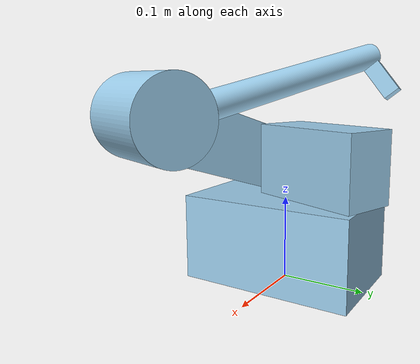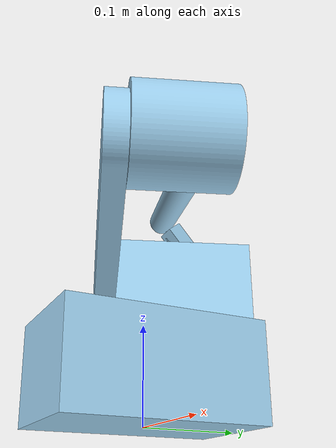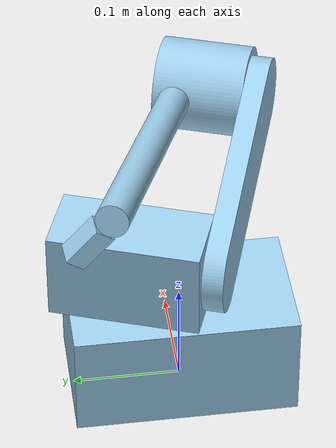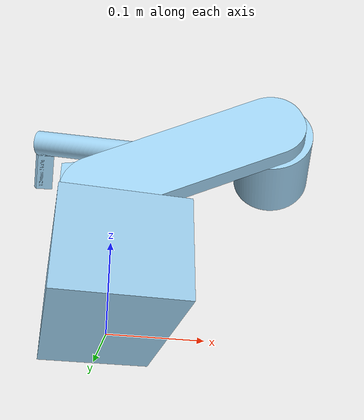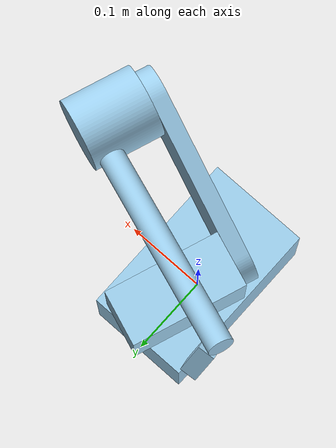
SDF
<?xml version="1.0" ?>
<!-- Generated using onshape-to-robot -->
<!-- Onshape https://cad.onshape.com/documents/95fd851c76f3f6bde8c085de/w/d547567e27705c867ac23e03/e/46c7eb3c59f888e21815eca3 -->
<sdf version="1.7">
  <model name="robot_description">
    <!-- Link base -->
    <link name="base">
      <inertial>
        <pose>2.99382e-22 -1.7312e-05 0.0512863 0 0 0</pose>
        <mass>8</mass>
        <inertia>
          <ixx>0.0355812</ixx>
          <ixy>0</ixy>
          <ixz>0</ixz>
          <iyy>0.0174346</iyy>
          <iyz>6.41425e-06</iyz>
          <izz>0.0389861</izz>
        </inertia>
      </inertial>
      <pose>0 0 0 0 -0 0</pose>
      <!-- Part base -->
      <visual name="base_visual_mesh_1">
        <pose relative_to="base">0 0 0.1026 3.14159 -0 1.5708</pose>
        <geometry>
          <mesh>
            <uri>model://robot_description/assets/base.stl</uri>
          </mesh>
        </geometry>
        <material>
          <ambient>0.615686 0.811765 0.929412 1</ambient>
          <diffuse>0.615686 0.811765 0.929412 1</diffuse>
          <specular>0.1 0.1 0.1 1</specular>
          <emissive>0 0 0 0</emissive>
        </material>
      </visual>
      <collision name="base_collision_mesh_2">
        <pose relative_to="base">0 0 0.1026 3.14159 -0 1.5708</pose>
        <geometry>
          <mesh>
            <uri>model://robot_description/assets/base.stl</uri>
          </mesh>
        </geometry>
      </collision>
    </link>
    <joint name="base_fixed_world" type="fixed">
      <parent>world</parent>
      <child>base</child>
    </joint>
    <!-- Link link_j1 -->
    <link name="link_j1">
      <inertial>
        <pose>0.0149283 -2.64819e-18 -0.0425258 0 0 0</pose>
        <mass>2.59</mass>
        <inertia>
          <ixx>0.0025397</ixx>
          <ixy>-2.50616e-21</ixy>
          <ixz>1.99012e-06</ixz>
          <iyy>0.00578814</iyy>
          <iyz>-1.83256e-23</iyz>
          <izz>0.00519517</izz>
        </inertia>
      </inertial>
      <pose relative_to="j1">0 0 0 0 -0 0</pose>
      <!-- Part link_j1 -->
      <visual name="link_j1_visual_mesh_1">
        <pose relative_to="link_j1">0.015 0 0 3.14159 -0 -9.20826e-18</pose>
        <geometry>
          <mesh>
            <uri>model://robot_description/assets/link_j1.stl</uri>
          </mesh>
        </geometry>
        <material>
          <ambient>0.615686 0.811765 0.929412 1</ambient>
          <diffuse>0.615686 0.811765 0.929412 1</diffuse>
          <specular>0.1 0.1 0.1 1</specular>
          <emissive>0 0 0 0</emissive>
        </material>
      </visual>
      <collision name="link_j1_collision_mesh_2">
        <pose relative_to="link_j1">0.015 0 0 3.14159 -0 -9.20826e-18</pose>
        <geometry>
          <mesh>
            <uri>model://robot_description/assets/link_j1.stl</uri>
          </mesh>
        </geometry>
      </collision>
    </link>
    <!-- Link link_j2 -->
    <link name="link_j2">
      <inertial>
        <pose>0.107522 6.82545e-18 -0.00988834 0 0 0</pose>
        <mass>1.75</mass>
        <inertia>
          <ixx>0.000857918</ixx>
          <ixy>-1.52824e-19</ixy>
          <ixz>2.47292e-05</ixz>
          <iyy>0.00952465</iyy>
          <iyz>-4.71797e-19</iyz>
          <izz>0.0102557</izz>
        </inertia>
      </inertial>
      <pose relative_to="j2">0 0 0 0 -0 0</pose>
      <!-- Part link_j2 -->
      <visual name="link_j2_visual_mesh_1">
        <pose relative_to="link_j2">6.93889e-18 0 -0.02 -8.4033e-18 -1.12211e-17 -2.75735e-17</pose>
        <geometry>
          <mesh>
            <uri>model://robot_description/assets/link_j2.stl</uri>
          </mesh>
        </geometry>
        <material>
          <ambient>0.615686 0.811765 0.929412 1</ambient>
          <diffuse>0.615686 0.811765 0.929412 1</diffuse>
          <specular>0.1 0.1 0.1 1</specular>
          <emissive>0 0 0 0</emissive>
        </material>
      </visual>
      <collision name="link_j2_collision_mesh_2">
        <pose relative_to="link_j2">6.93889e-18 0 -0.02 -8.4033e-18 -1.12211e-17 -2.75735e-17</pose>
        <geometry>
          <mesh>
            <uri>model://robot_description/assets/link_j2.stl</uri>
          </mesh>
        </geometry>
      </collision>
    </link>
    <!-- Link link_j3 -->
    <link name="link_j3">
      <inertial>
        <pose>-5.95014e-05 -1.42028e-09 -0.0425214 0 0 0</pose>
        <mass>0.472</mass>
        <inertia>
          <ixx>0.000507467</ixx>
          <ixy>2.16011e-11</ixy>
          <ixz>-6.11734e-07</ixz>
          <iyy>0.000506392</iyy>
          <iyz>-1.52903e-11</iyz>
          <izz>0.000439352</izz>
        </inertia>
      </inertial>
      <pose relative_to="j3">0 0 0 0 -0 0</pose>
      <!-- Part link_j3 -->
      <visual name="link_j3_visual_mesh_1">
        <pose relative_to="link_j3">0 0 0.01 3.14159 -6.24694e-18 1.41428e-18</pose>
        <geometry>
          <mesh>
            <uri>model://robot_description/assets/link_j3.stl</uri>
          </mesh>
        </geometry>
        <material>
          <ambient>0.615686 0.811765 0.929412 1</ambient>
          <diffuse>0.615686 0.811765 0.929412 1</diffuse>
          <specular>0.1 0.1 0.1 1</specular>
          <emissive>0 0 0 0</emissive>
        </material>
      </visual>
      <collision name="link_j3_collision_mesh_2">
        <pose relative_to="link_j3">0 0 0.01 3.14159 -6.24694e-18 1.41428e-18</pose>
        <geometry>
          <mesh>
            <uri>model://robot_description/assets/link_j3.stl</uri>
          </mesh>
        </geometry>
      </collision>
    </link>
    <!-- Link link_j4 -->
    <link name="link_j4">
      <inertial>
        <pose>3.3764e-05 -2.63763e-05 0.124489 0 0 0</pose>
        <mass>0.349</mass>
        <inertia>
          <ixx>0.00185925</ixx>
          <ixy>-7.34873e-08</ixy>
          <ixz>-1.38051e-06</ixz>
          <iyy>0.00185922</iyy>
          <iyz>1.07843e-06</iyz>
          <izz>3.91081e-05</izz>
        </inertia>
      </inertial>
      <pose relative_to="j4">0 0 0 0 -0 0</pose>
      <!-- Part link_j4 -->
      <visual name="link_j4_visual_mesh_1">
        <pose relative_to="link_j4">0 1.38778e-17 -0.01 -1.5708 7.72225e-16 2.47843</pose>
        <geometry>
          <mesh>
            <uri>model://robot_description/assets/link_j4.stl</uri>
          </mesh>
        </geometry>
        <material>
          <ambient>0.615686 0.811765 0.929412 1</ambient>
          <diffuse>0.615686 0.811765 0.929412 1</diffuse>
          <specular>0.1 0.1 0.1 1</specular>
          <emissive>0 0 0 0</emissive>
        </material>
      </visual>
      <collision name="link_j4_collision_mesh_2">
        <pose relative_to="link_j4">0 1.38778e-17 -0.01 -1.5708 7.72225e-16 2.47843</pose>
        <geometry>
          <mesh>
            <uri>model://robot_description/assets/link_j4.stl</uri>
          </mesh>
        </geometry>
      </collision>
    </link>
    <!-- Link link_j5 -->
    <link name="link_j5">
      <inertial>
        <pose>-2.36108e-17 -7.84788e-18 -0.0198388 0 0 0</pose>
        <mass>0.218</mass>
        <inertia>
          <ixx>4.39867e-05</ixx>
          <ixy>6.05271e-22</ixy>
          <ixz>-1.62426e-21</ixz>
          <iyy>4.39867e-05</iyy>
          <iyz>4.89603e-22</iyz>
          <izz>1.4006e-05</izz>
        </inertia>
      </inertial>
      <pose relative_to="j5">0 0 0 0 -0 0</pose>
      <!-- Part link_j5 -->
      <visual name="link_j5_visual_mesh_1">
        <pose relative_to="link_j5">-2.77556e-17 -6.93889e-18 0.01 1.5708 -7.25495e-18 1.57937e-17</pose>
        <geometry>
          <mesh>
            <uri>model://robot_description/assets/link_j5.stl</uri>
          </mesh>
        </geometry>
        <material>
          <ambient>0.615686 0.811765 0.929412 1</ambient>
          <diffuse>0.615686 0.811765 0.929412 1</diffuse>
          <specular>0.1 0.1 0.1 1</specular>
          <emissive>0 0 0 0</emissive>
        </material>
      </visual>
      <collision name="link_j5_collision_mesh_2">
        <pose relative_to="link_j5">-2.77556e-17 -6.93889e-18 0.01 1.5708 -7.25495e-18 1.57937e-17</pose>
        <geometry>
          <mesh>
            <uri>model://robot_description/assets/link_j5.stl</uri>
          </mesh>
        </geometry>
      </collision>
    </link>
    <!-- Joint from link_j4 to link_j5 -->
    <joint name="j5" type="revolute">
      <pose relative_to="link_j4">-0.0118758 0.00927716 0.241638 -1.5708 0.561045 -2.23396</pose>
      <parent>link_j4</parent>
      <child>link_j5</child>
      <axis>
        <xyz>0 0 1</xyz>
        <limit>
          <effort>10</effort>
          <velocity>10</velocity>
          <lower>-3.141592653589793</lower>
          <upper>3.141592653589793</upper>
        </limit>
        <dynamics>
          <friction>0.0</friction>
          <damping>0.0</damping>
        </dynamics>
      </axis>
    </joint>
    <!-- Joint from link_j3 to link_j4 -->
    <joint name="j4" type="revolute">
      <pose relative_to="link_j3">0.0432636 0 -0.0643 -1.5708 -6.40352e-18 -1.5708</pose>
      <parent>link_j3</parent>
      <child>link_j4</child>
      <axis>
        <xyz>0 0 1</xyz>
        <limit>
          <effort>10</effort>
          <velocity>10</velocity>
          <lower>-3.141592653589793</lower>
          <upper>3.141592653589793</upper>
        </limit>
        <dynamics>
          <friction>0.0</friction>
          <damping>0.0</damping>
        </dynamics>
      </axis>
    </joint>
    <!-- Joint from link_j2 to link_j3 -->
    <joint name="j3" type="revolute">
      <pose relative_to="link_j2">0.2086 2.77556e-17 1.07553e-16 -3.14159 1.41293e-15 -2.59897</pose>
      <parent>link_j2</parent>
      <child>link_j3</child>
      <axis>
        <xyz>0 0 1</xyz>
        <limit>
          <effort>10</effort>
          <velocity>10</velocity>
          <lower>-3.141592653589793</lower>
          <upper>3.141592653589793</upper>
        </limit>
        <dynamics>
          <friction>0.0</friction>
          <damping>0.0</damping>
        </dynamics>
      </axis>
    </joint>
    <!-- Joint from link_j1 to link_j2 -->
    <joint name="j2" type="revolute">
      <pose relative_to="link_j1">0.085 2.77556e-17 -0.03632 1.5708 0.322027 -1.5708</pose>
      <parent>link_j1</parent>
      <child>link_j2</child>
      <axis>
        <xyz>0 0 1</xyz>
        <limit>
          <effort>10</effort>
          <velocity>10</velocity>
          <lower>-3.141592653589793</lower>
          <upper>3.141592653589793</upper>
        </limit>
        <dynamics>
          <friction>0.0</friction>
          <damping>0.0</damping>
        </dynamics>
      </axis>
    </joint>
    <!-- Joint from base to link_j1 -->
    <joint name="j1" type="revolute">
      <pose relative_to="base">1.38778e-17 0.0585 0.1026 3.14159 -0 -1.91954</pose>
      <parent>base</parent>
      <child>link_j1</child>
      <axis>
        <xyz>0 0 1</xyz>
        <limit>
          <effort>10</effort>
          <velocity>10</velocity>
          <lower>-3.141592653589793</lower>
          <upper>3.141592653589793</upper>
        </limit>
        <dynamics>
          <friction>0.0</friction>
          <damping>0.0</damping>
        </dynamics>
      </axis>
    </joint>
  </model>
</sdf>
